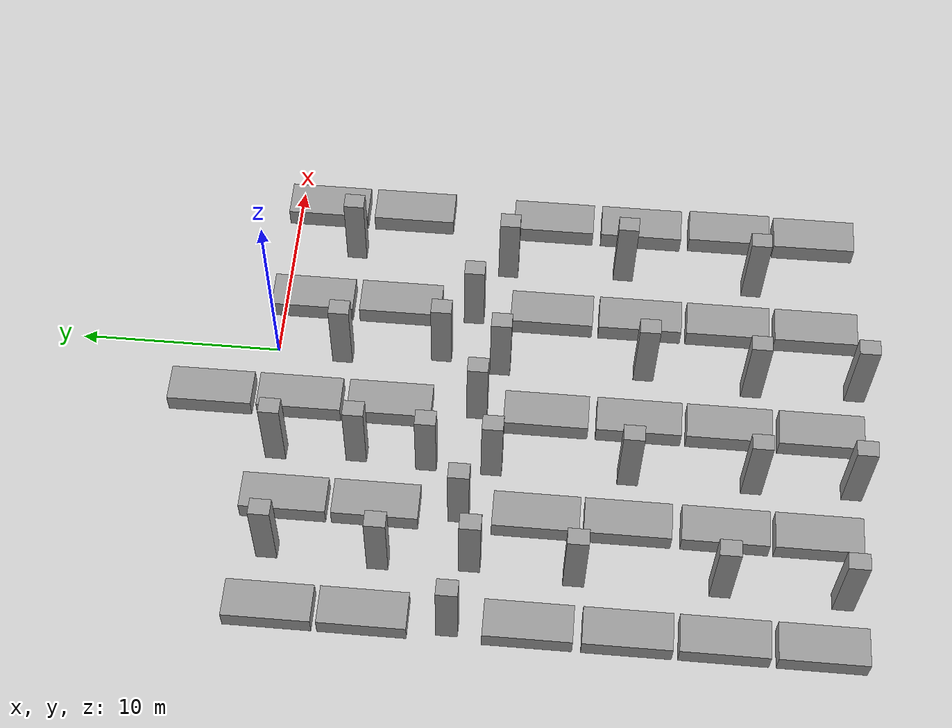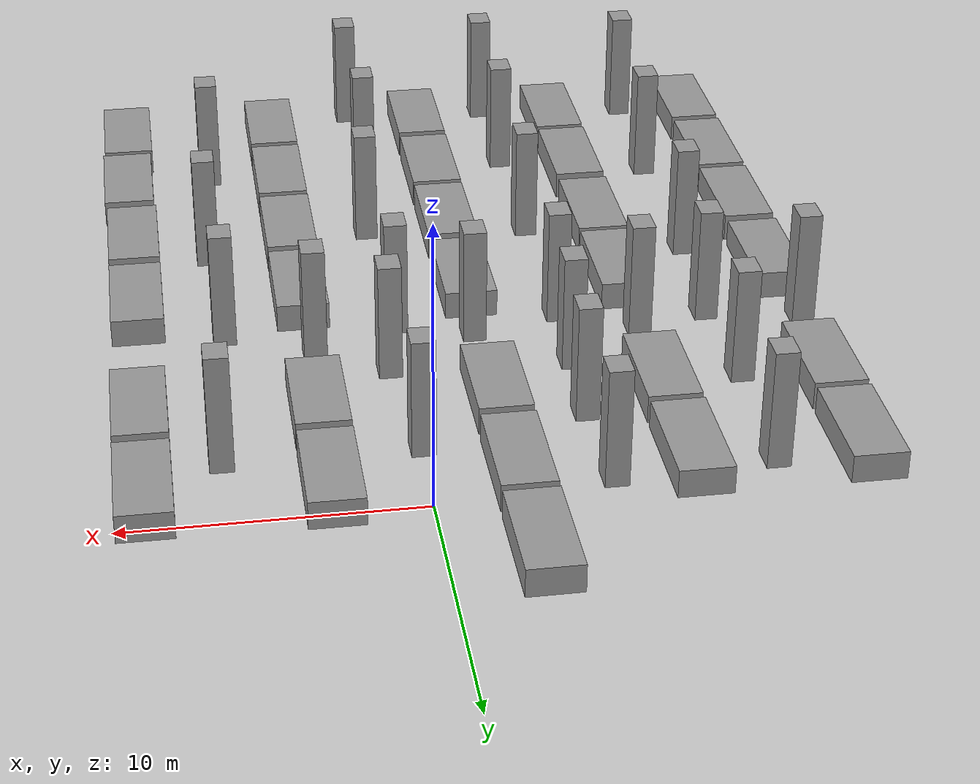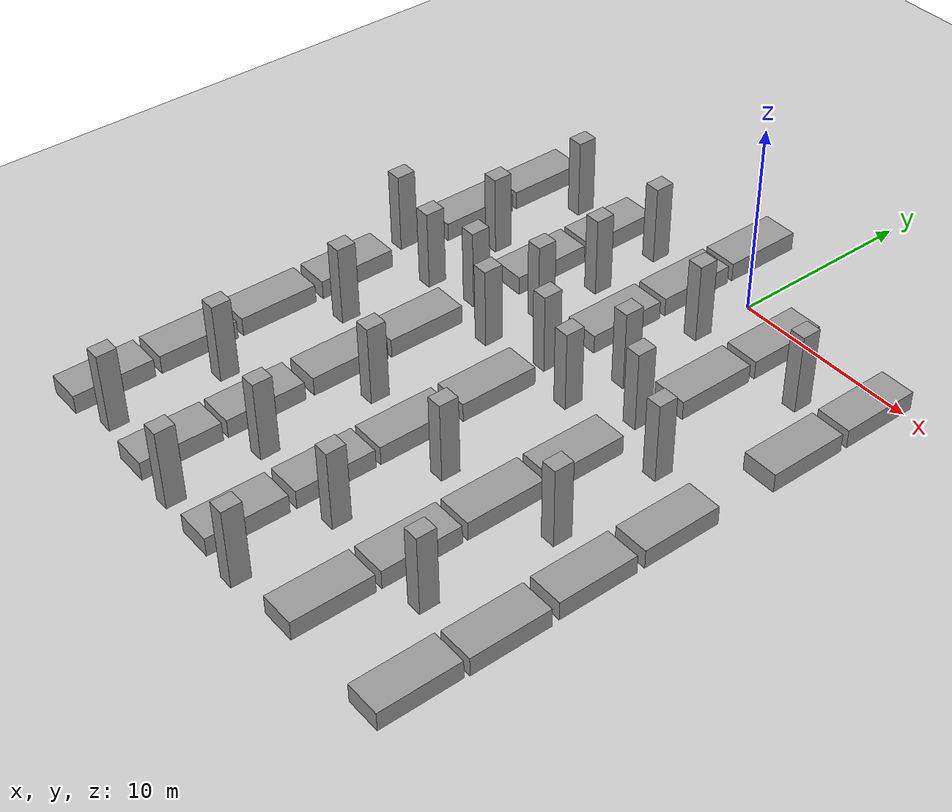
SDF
<sdf version="1.7">
 <world name="default">
  <model name="ground_plane">
   <static>1</static>
   <link name="link">
    <collision name="collision">
     <geometry><plane><normal>0 0 1</normal><size>100 100</size></plane></geometry>
     <surface>
      <contact><collide_bitmask>65535</collide_bitmask></contact>
      <friction><ode><mu>100</mu><mu2>50</mu2></ode></friction>
     </surface>
    </collision>
    <visual name="visual">
     <geometry><plane><normal>0 0 1</normal><size>100 100</size></plane></geometry>
     <material>
      <script><uri>file://media/materials/scripts/gazebo.material</uri><name>Gazebo/Grey</name></script>
     </material>
    </visual>
   </link>
  </model>
  <model name="unit_box">
   <pose>8.90241 -26.8368 0.5 -0 1e-06 0.001252</pose>
   <link name="link">
    <inertial>
     <mass>1</mass>
     <inertia>
      <ixx>0.166667</ixx>
      <ixy>0</ixy>
      <ixz>0</ixz>
      <iyy>0.166667</iyy>
      <iyz>0</iyz>
      <izz>0.166667</izz>
     </inertia>
    </inertial>
    <collision name="collision"><geometry><box><size>1.85096 4.12993 1</size></box></geometry></collision>
    <visual name="visual">
     <geometry><box><size>1.85096 4.12993 1</size></box></geometry>
     <material>
      <script><name>Gazebo/Grey</name><uri>file://media/materials/scripts/gazebo.material</uri></script>
     </material>
    </visual>
   </link>
  </model>
  <model name="unit_box_clone">
   <pose>8.96485 -22.4699 0.499996 0 5e-06 -0.000225</pose>
   <link name="link">
    <inertial>
     <mass>1</mass>
     <inertia>
      <ixx>0.166667</ixx>
      <ixy>0</ixy>
      <ixz>0</ixz>
      <iyy>0.166667</iyy>
      <iyz>0</iyz>
      <izz>0.166667</izz>
     </inertia>
    </inertial>
    <collision name="collision"><geometry><box><size>1.85096 4.12993 1</size></box></geometry></collision>
    <visual name="visual">
     <geometry><box><size>1.85096 4.12993 1</size></box></geometry>
     <material>
      <script><name>Gazebo/Grey</name><uri>file://media/materials/scripts/gazebo.material</uri></script>
     </material>
    </visual>
   </link>
  </model>
  <model name="unit_box_clone_clone">
   <pose>8.89161 -17.9103 0.499996 0 5e-06 -0.000242</pose>
   <link name="link">
    <inertial>
     <mass>1</mass>
     <inertia>
      <ixx>0.166667</ixx>
      <ixy>0</ixy>
      <ixz>0</ixz>
      <iyy>0.166667</iyy>
      <iyz>0</iyz>
      <izz>0.166667</izz>
     </inertia>
    </inertial>
    <collision name="collision"><geometry><box><size>1.85096 4.12993 1</size></box></geometry></collision>
    <visual name="visual">
     <geometry><box><size>1.85096 4.12993 1</size></box></geometry>
     <material>
      <script><name>Gazebo/Grey</name><uri>file://media/materials/scripts/gazebo.material</uri></script>
     </material>
    </visual>
   </link>
  </model>
  <model name="unit_box_clone_clone_0">
   <pose>8.88995 -13.3499 0.499996 0 5e-06 -0.000396</pose>
   <link name="link">
    <inertial>
     <mass>1</mass>
     <inertia>
      <ixx>0.166667</ixx>
      <ixy>0</ixy>
      <ixz>0</ixz>
      <iyy>0.166667</iyy>
      <iyz>0</iyz>
      <izz>0.166667</izz>
     </inertia>
    </inertial>
    <collision name="collision"><geometry><box><size>1.85096 4.12993 1</size></box></geometry></collision>
    <visual name="visual">
     <geometry><box><size>1.85096 4.12993 1</size></box></geometry>
     <material>
      <script><name>Gazebo/Grey</name><uri>file://media/materials/scripts/gazebo.material</uri></script>
     </material>
    </visual>
   </link>
  </model>
  <model name="unit_box_clone_clone_1">
   <pose>8.98225 -6.04845 0.499996 0 5e-06 -0.000487</pose>
   <link name="link">
    <inertial>
     <mass>1</mass>
     <inertia>
      <ixx>0.166667</ixx>
      <ixy>0</ixy>
      <ixz>0</ixz>
      <iyy>0.166667</iyy>
      <iyz>0</iyz>
      <izz>0.166667</izz>
     </inertia>
    </inertial>
    <collision name="collision"><geometry><box><size>1.85096 4.12993 1</size></box></geometry></collision>
    <visual name="visual">
     <geometry><box><size>1.85096 4.12993 1</size></box></geometry>
     <material>
      <script><name>Gazebo/Grey</name><uri>file://media/materials/scripts/gazebo.material</uri></script>
     </material>
    </visual>
   </link>
  </model>
  <model name="unit_box_clone_clone_3">
   <pose>8.98226 -1.54834 0.5 0 -1e-06 -0.000107</pose>
   <link name="link">
    <inertial>
     <mass>1</mass>
     <inertia>
      <ixx>0.166667</ixx>
      <ixy>0</ixy>
      <ixz>0</ixz>
      <iyy>0.166667</iyy>
      <iyz>0</iyz>
      <izz>0.166667</izz>
     </inertia>
    </inertial>
    <collision name="collision"><geometry><box><size>1.85096 4.12993 1</size></box></geometry></collision>
    <visual name="visual">
     <geometry><box><size>1.85096 4.12993 1</size></box></geometry>
     <material>
      <script><name>Gazebo/Grey</name><uri>file://media/materials/scripts/gazebo.material</uri></script>
     </material>
    </visual>
   </link>
  </model>
  <model name="unit_box_clone_clone_15">
   <pose>3.08121 -1.42818 0.5 -0 -1e-06 -0.001181</pose>
   <link name="link">
    <inertial>
     <mass>1</mass>
     <inertia>
      <ixx>0.166667</ixx>
      <ixy>0</ixy>
      <ixz>0</ixz>
      <iyy>0.166667</iyy>
      <iyz>0</iyz>
      <izz>0.166667</izz>
     </inertia>
    </inertial>
    <collision name="collision"><geometry><box><size>1.85096 4.12993 1</size></box></geometry></collision>
    <visual name="visual">
     <geometry><box><size>1.85096 4.12993 1</size></box></geometry>
     <material>
      <script><name>Gazebo/Grey</name><uri>file://media/materials/scripts/gazebo.material</uri></script>
     </material>
    </visual>
   </link>
  </model>
  <model name="unit_box_clone_clone_16">
   <pose>3.08031 -5.90701 0.5 -0 1e-06 0.000942</pose>
   <link name="link">
    <inertial>
     <mass>1</mass>
     <inertia>
      <ixx>0.166667</ixx>
      <ixy>0</ixy>
      <ixz>0</ixz>
      <iyy>0.166667</iyy>
      <iyz>0</iyz>
      <izz>0.166667</izz>
     </inertia>
    </inertial>
    <collision name="collision"><geometry><box><size>1.85096 4.12993 1</size></box></geometry></collision>
    <visual name="visual">
     <geometry><box><size>1.85096 4.12993 1</size></box></geometry>
     <material>
      <script><name>Gazebo/Grey</name><uri>file://media/materials/scripts/gazebo.material</uri></script>
     </material>
    </visual>
   </link>
  </model>
  <model name="unit_box_clone_clone_17">
   <pose>3.08032 -13.5734 0.5 -0 -1e-06 -0.001711</pose>
   <link name="link">
    <inertial>
     <mass>1</mass>
     <inertia>
      <ixx>0.166667</ixx>
      <ixy>0</ixy>
      <ixz>0</ixz>
      <iyy>0.166667</iyy>
      <iyz>0</iyz>
      <izz>0.166667</izz>
     </inertia>
    </inertial>
    <collision name="collision"><geometry><box><size>1.85096 4.12993 1</size></box></geometry></collision>
    <visual name="visual">
     <geometry><box><size>1.85096 4.12993 1</size></box></geometry>
     <material>
      <script><name>Gazebo/Grey</name><uri>file://media/materials/scripts/gazebo.material</uri></script>
     </material>
    </visual>
   </link>
  </model>
  <model name="unit_box_clone_clone_18">
   <pose>3.08001 -18.0322 0.5 -0 1e-06 0.002271</pose>
   <link name="link">
    <inertial>
     <mass>1</mass>
     <inertia>
      <ixx>0.166667</ixx>
      <ixy>0</ixy>
      <ixz>0</ixz>
      <iyy>0.166667</iyy>
      <iyz>0</iyz>
      <izz>0.166667</izz>
     </inertia>
    </inertial>
    <collision name="collision"><geometry><box><size>1.85096 4.12993 1</size></box></geometry></collision>
    <visual name="visual">
     <geometry><box><size>1.85096 4.12993 1</size></box></geometry>
     <material>
      <script><name>Gazebo/Grey</name><uri>file://media/materials/scripts/gazebo.material</uri></script>
     </material>
    </visual>
   </link>
  </model>
  <model name="unit_box_clone_clone_19">
   <pose>3.08438 -22.4365 0.499996 0 -5e-06 0.000502</pose>
   <link name="link">
    <inertial>
     <mass>1</mass>
     <inertia>
      <ixx>0.166667</ixx>
      <ixy>0</ixy>
      <ixz>0</ixz>
      <iyy>0.166667</iyy>
      <iyz>0</iyz>
      <izz>0.166667</izz>
     </inertia>
    </inertial>
    <collision name="collision"><geometry><box><size>1.85096 4.12993 1</size></box></geometry></collision>
    <visual name="visual">
     <geometry><box><size>1.85096 4.12993 1</size></box></geometry>
     <material>
      <script><name>Gazebo/Grey</name><uri>file://media/materials/scripts/gazebo.material</uri></script>
     </material>
    </visual>
   </link>
  </model>
  <model name="unit_box_clone_clone_20">
   <pose>3.08835 -26.8512 0.5 0 -1e-06 0.001174</pose>
   <link name="link">
    <inertial>
     <mass>1</mass>
     <inertia>
      <ixx>0.166667</ixx>
      <ixy>0</ixy>
      <ixz>0</ixz>
      <iyy>0.166667</iyy>
      <iyz>0</iyz>
      <izz>0.166667</izz>
     </inertia>
    </inertial>
    <collision name="collision"><geometry><box><size>1.85096 4.12993 1</size></box></geometry></collision>
    <visual name="visual">
     <geometry><box><size>1.85096 4.12993 1</size></box></geometry>
     <material>
      <script><name>Gazebo/Grey</name><uri>file://media/materials/scripts/gazebo.material</uri></script>
     </material>
    </visual>
   </link>
  </model>
  <model name="unit_box_clone_clone_21">
   <pose>-2.93399 -27.0156 0.499996 0 5e-06 -0.000369</pose>
   <link name="link">
    <inertial>
     <mass>1</mass>
     <inertia>
      <ixx>0.166667</ixx>
      <ixy>0</ixy>
      <ixz>0</ixz>
      <iyy>0.166667</iyy>
      <iyz>0</iyz>
      <izz>0.166667</izz>
     </inertia>
    </inertial>
    <collision name="collision"><geometry><box><size>1.85096 4.12993 1</size></box></geometry></collision>
    <visual name="visual">
     <geometry><box><size>1.85096 4.12993 1</size></box></geometry>
     <material>
      <script><name>Gazebo/Grey</name><uri>file://media/materials/scripts/gazebo.material</uri></script>
     </material>
    </visual>
   </link>
  </model>
  <model name="unit_box_clone_clone_22">
   <pose>-2.93399 -22.5461 0.499996 -0 -5e-06 0.000186</pose>
   <link name="link">
    <inertial>
     <mass>1</mass>
     <inertia>
      <ixx>0.166667</ixx>
      <ixy>0</ixy>
      <ixz>0</ixz>
      <iyy>0.166667</iyy>
      <iyz>0</iyz>
      <izz>0.166667</izz>
     </inertia>
    </inertial>
    <collision name="collision"><geometry><box><size>1.85096 4.12993 1</size></box></geometry></collision>
    <visual name="visual">
     <geometry><box><size>1.85096 4.12993 1</size></box></geometry>
     <material>
      <script><name>Gazebo/Grey</name><uri>file://media/materials/scripts/gazebo.material</uri></script>
     </material>
    </visual>
   </link>
  </model>
  <model name="unit_box_clone_clone_23">
   <pose>-2.93399 -18.1654 0.499996 0 -5e-06 -1.9e-05</pose>
   <link name="link">
    <inertial>
     <mass>1</mass>
     <inertia>
      <ixx>0.166667</ixx>
      <ixy>0</ixy>
      <ixz>0</ixz>
      <iyy>0.166667</iyy>
      <iyz>0</iyz>
      <izz>0.166667</izz>
     </inertia>
    </inertial>
    <collision name="collision"><geometry><box><size>1.85096 4.12993 1</size></box></geometry></collision>
    <visual name="visual">
     <geometry><box><size>1.85096 4.12993 1</size></box></geometry>
     <material>
      <script><name>Gazebo/Grey</name><uri>file://media/materials/scripts/gazebo.material</uri></script>
     </material>
    </visual>
   </link>
  </model>
  <model name="unit_box_clone_clone_24">
   <pose>-2.934 -13.6376 0.5 0 -1e-06 -0.001213</pose>
   <link name="link">
    <inertial>
     <mass>1</mass>
     <inertia>
      <ixx>0.166667</ixx>
      <ixy>0</ixy>
      <ixz>0</ixz>
      <iyy>0.166667</iyy>
      <iyz>0</iyz>
      <izz>0.166667</izz>
     </inertia>
    </inertial>
    <collision name="collision"><geometry><box><size>1.85096 4.12993 1</size></box></geometry></collision>
    <visual name="visual">
     <geometry><box><size>1.85096 4.12993 1</size></box></geometry>
     <material>
      <script><name>Gazebo/Grey</name><uri>file://media/materials/scripts/gazebo.material</uri></script>
     </material>
    </visual>
   </link>
  </model>
  <model name="unit_box_clone_clone_25">
   <pose>-2.93405 -5.96208 0.5 0 -1e-06 0.00233</pose>
   <link name="link">
    <inertial>
     <mass>1</mass>
     <inertia>
      <ixx>0.166667</ixx>
      <ixy>0</ixy>
      <ixz>0</ixz>
      <iyy>0.166667</iyy>
      <iyz>0</iyz>
      <izz>0.166667</izz>
     </inertia>
    </inertial>
    <collision name="collision"><geometry><box><size>1.85096 4.12993 1</size></box></geometry></collision>
    <visual name="visual">
     <geometry><box><size>1.85096 4.12993 1</size></box></geometry>
     <material>
      <script><name>Gazebo/Grey</name><uri>file://media/materials/scripts/gazebo.material</uri></script>
     </material>
    </visual>
   </link>
  </model>
  <model name="unit_box_clone_clone_26">
   <pose>-2.934 -1.5017 0.5 0 -1e-06 0.001041</pose>
   <link name="link">
    <inertial>
     <mass>1</mass>
     <inertia>
      <ixx>0.166667</ixx>
      <ixy>0</ixy>
      <ixz>0</ixz>
      <iyy>0.166667</iyy>
      <iyz>0</iyz>
      <izz>0.166667</izz>
     </inertia>
    </inertial>
    <collision name="collision"><geometry><box><size>1.85096 4.12993 1</size></box></geometry></collision>
    <visual name="visual">
     <geometry><box><size>1.85096 4.12993 1</size></box></geometry>
     <material>
      <script><name>Gazebo/Grey</name><uri>file://media/materials/scripts/gazebo.material</uri></script>
     </material>
    </visual>
   </link>
  </model>
  <model name="unit_box_clone_clone_27">
   <pose>-2.934 2.90946 0.5 0 1e-06 0.001432</pose>
   <link name="link">
    <inertial>
     <mass>1</mass>
     <inertia>
      <ixx>0.166667</ixx>
      <ixy>0</ixy>
      <ixz>0</ixz>
      <iyy>0.166667</iyy>
      <iyz>0</iyz>
      <izz>0.166667</izz>
     </inertia>
    </inertial>
    <collision name="collision"><geometry><box><size>1.85096 4.12993 1</size></box></geometry></collision>
    <visual name="visual">
     <geometry><box><size>1.85096 4.12993 1</size></box></geometry>
     <material>
      <script><name>Gazebo/Grey</name><uri>file://media/materials/scripts/gazebo.material</uri></script>
     </material>
    </visual>
   </link>
  </model>
  <model name="unit_box_clone_clone_33">
   <pose>-8.57999 -26.7871 0.499996 0 5e-06 0.000206</pose>
   <link name="link">
    <inertial>
     <mass>1</mass>
     <inertia>
      <ixx>0.166667</ixx>
      <ixy>0</ixy>
      <ixz>0</ixz>
      <iyy>0.166667</iyy>
      <iyz>0</iyz>
      <izz>0.166667</izz>
     </inertia>
    </inertial>
    <collision name="collision"><geometry><box><size>1.85096 4.12993 1</size></box></geometry></collision>
    <visual name="visual">
     <geometry><box><size>1.85096 4.12993 1</size></box></geometry>
     <material>
      <script><name>Gazebo/Grey</name><uri>file://media/materials/scripts/gazebo.material</uri></script>
     </material>
    </visual>
   </link>
  </model>
  <model name="unit_box_clone_clone_34">
   <pose>-8.58 -22.4107 0.5 0 1e-06 -0.000679</pose>
   <link name="link">
    <inertial>
     <mass>1</mass>
     <inertia>
      <ixx>0.166667</ixx>
      <ixy>0</ixy>
      <ixz>0</ixz>
      <iyy>0.166667</iyy>
      <iyz>0</iyz>
      <izz>0.166667</izz>
     </inertia>
    </inertial>
    <collision name="collision"><geometry><box><size>1.85096 4.12993 1</size></box></geometry></collision>
    <visual name="visual">
     <geometry><box><size>1.85096 4.12993 1</size></box></geometry>
     <material>
      <script><name>Gazebo/Grey</name><uri>file://media/materials/scripts/gazebo.material</uri></script>
     </material>
    </visual>
   </link>
  </model>
  <model name="unit_box_clone_clone_35">
   <pose>-8.58001 -17.828 0.5 -0 -1e-06 0.000929</pose>
   <link name="link">
    <inertial>
     <mass>1</mass>
     <inertia>
      <ixx>0.166667</ixx>
      <ixy>0</ixy>
      <ixz>0</ixz>
      <iyy>0.166667</iyy>
      <iyz>0</iyz>
      <izz>0.166667</izz>
     </inertia>
    </inertial>
    <collision name="collision"><geometry><box><size>1.85096 4.12993 1</size></box></geometry></collision>
    <visual name="visual">
     <geometry><box><size>1.85096 4.12993 1</size></box></geometry>
     <material>
      <script><name>Gazebo/Grey</name><uri>file://media/materials/scripts/gazebo.material</uri></script>
     </material>
    </visual>
   </link>
  </model>
  <model name="unit_box_clone_clone_36">
   <pose>-8.58 -13.4881 0.5 -0 1e-06 -0.000877</pose>
   <link name="link">
    <inertial>
     <mass>1</mass>
     <inertia>
      <ixx>0.166667</ixx>
      <ixy>0</ixy>
      <ixz>0</ixz>
      <iyy>0.166667</iyy>
      <iyz>0</iyz>
      <izz>0.166667</izz>
     </inertia>
    </inertial>
    <collision name="collision"><geometry><box><size>1.85096 4.12993 1</size></box></geometry></collision>
    <visual name="visual">
     <geometry><box><size>1.85096 4.12993 1</size></box></geometry>
     <material>
      <script><name>Gazebo/Grey</name><uri>file://media/materials/scripts/gazebo.material</uri></script>
     </material>
    </visual>
   </link>
  </model>
  <model name="unit_box_clone_clone_37">
   <pose>-8.57999 -5.87789 0.499996 0 5e-06 -0.001114</pose>
   <link name="link">
    <inertial>
     <mass>1</mass>
     <inertia>
      <ixx>0.166667</ixx>
      <ixy>0</ixy>
      <ixz>0</ixz>
      <iyy>0.166667</iyy>
      <iyz>0</iyz>
      <izz>0.166667</izz>
     </inertia>
    </inertial>
    <collision name="collision"><geometry><box><size>1.85096 4.12993 1</size></box></geometry></collision>
    <visual name="visual">
     <geometry><box><size>1.85096 4.12993 1</size></box></geometry>
     <material>
      <script><name>Gazebo/Grey</name><uri>file://media/materials/scripts/gazebo.material</uri></script>
     </material>
    </visual>
   </link>
  </model>
  <model name="unit_box_clone_clone_38">
   <pose>-8.58001 -1.47265 0.499996 0 5e-06 0.000312</pose>
   <link name="link">
    <inertial>
     <mass>1</mass>
     <inertia>
      <ixx>0.166667</ixx>
      <ixy>0</ixy>
      <ixz>0</ixz>
      <iyy>0.166667</iyy>
      <iyz>0</iyz>
      <izz>0.166667</izz>
     </inertia>
    </inertial>
    <collision name="collision"><geometry><box><size>1.85096 4.12993 1</size></box></geometry></collision>
    <visual name="visual">
     <geometry><box><size>1.85096 4.12993 1</size></box></geometry>
     <material>
      <script><name>Gazebo/Grey</name><uri>file://media/materials/scripts/gazebo.material</uri></script>
     </material>
    </visual>
   </link>
  </model>
  <model name="unit_box_clone_clone_51">
   <pose>-14.24 -1.49685 0.499996 0 5e-06 0.000312</pose>
   <link name="link">
    <inertial>
     <mass>1</mass>
     <inertia>
      <ixx>0.166667</ixx>
      <ixy>0</ixy>
      <ixz>0</ixz>
      <iyy>0.166667</iyy>
      <iyz>0</iyz>
      <izz>0.166667</izz>
     </inertia>
    </inertial>
    <collision name="collision"><geometry><box><size>1.85096 4.12993 1</size></box></geometry></collision>
    <visual name="visual">
     <geometry><box><size>1.85096 4.12993 1</size></box></geometry>
     <material>
      <script><name>Gazebo/Grey</name><uri>file://media/materials/scripts/gazebo.material</uri></script>
     </material>
    </visual>
   </link>
  </model>
  <model name="unit_box_clone_clone_52">
   <pose>-14.24 -5.89571 0.5 0 -1e-06 -0.000713</pose>
   <link name="link">
    <inertial>
     <mass>1</mass>
     <inertia>
      <ixx>0.166667</ixx>
      <ixy>0</ixy>
      <ixz>0</ixz>
      <iyy>0.166667</iyy>
      <iyz>0</iyz>
      <izz>0.166667</izz>
     </inertia>
    </inertial>
    <collision name="collision"><geometry><box><size>1.85096 4.12993 1</size></box></geometry></collision>
    <visual name="visual">
     <geometry><box><size>1.85096 4.12993 1</size></box></geometry>
     <material>
      <script><name>Gazebo/Grey</name><uri>file://media/materials/scripts/gazebo.material</uri></script>
     </material>
    </visual>
   </link>
  </model>
  <model name="unit_box_clone_clone_53">
   <pose>-14.24 -13.4729 0.499996 0 5e-06 0.0007</pose>
   <link name="link">
    <inertial>
     <mass>1</mass>
     <inertia>
      <ixx>0.166667</ixx>
      <ixy>0</ixy>
      <ixz>0</ixz>
      <iyy>0.166667</iyy>
      <iyz>0</iyz>
      <izz>0.166667</izz>
     </inertia>
    </inertial>
    <collision name="collision"><geometry><box><size>1.85096 4.12993 1</size></box></geometry></collision>
    <visual name="visual">
     <geometry><box><size>1.85096 4.12993 1</size></box></geometry>
     <material>
      <script><name>Gazebo/Grey</name><uri>file://media/materials/scripts/gazebo.material</uri></script>
     </material>
    </visual>
   </link>
  </model>
  <model name="unit_box_clone_clone_54">
   <pose>-14.24 -18.0108 0.5 0 1e-06 0.001178</pose>
   <link name="link">
    <inertial>
     <mass>1</mass>
     <inertia>
      <ixx>0.166667</ixx>
      <ixy>0</ixy>
      <ixz>0</ixz>
      <iyy>0.166667</iyy>
      <iyz>0</iyz>
      <izz>0.166667</izz>
     </inertia>
    </inertial>
    <collision name="collision"><geometry><box><size>1.85096 4.12993 1</size></box></geometry></collision>
    <visual name="visual">
     <geometry><box><size>1.85096 4.12993 1</size></box></geometry>
     <material>
      <script><name>Gazebo/Grey</name><uri>file://media/materials/scripts/gazebo.material</uri></script>
     </material>
    </visual>
   </link>
  </model>
  <model name="unit_box_clone_clone_55">
   <pose>-14.24 -22.43 0.5 0 1e-06 -0.000648</pose>
   <link name="link">
    <inertial>
     <mass>1</mass>
     <inertia>
      <ixx>0.166667</ixx>
      <ixy>0</ixy>
      <ixz>0</ixz>
      <iyy>0.166667</iyy>
      <iyz>0</iyz>
      <izz>0.166667</izz>
     </inertia>
    </inertial>
    <collision name="collision"><geometry><box><size>1.85096 4.12993 1</size></box></geometry></collision>
    <visual name="visual">
     <geometry><box><size>1.85096 4.12993 1</size></box></geometry>
     <material>
      <script><name>Gazebo/Grey</name><uri>file://media/materials/scripts/gazebo.material</uri></script>
     </material>
    </visual>
   </link>
  </model>
  <model name="unit_box_clone_clone_56">
   <pose>-14.24 -26.883 0.499996 0 5e-06 -6.9e-05</pose>
   <link name="link">
    <inertial>
     <mass>1</mass>
     <inertia>
      <ixx>0.166667</ixx>
      <ixy>0</ixy>
      <ixz>0</ixz>
      <iyy>0.166667</iyy>
      <iyz>0</iyz>
      <izz>0.166667</izz>
     </inertia>
    </inertial>
    <collision name="collision"><geometry><box><size>1.85096 4.12993 1</size></box></geometry></collision>
    <visual name="visual">
     <geometry><box><size>1.85096 4.12993 1</size></box></geometry>
     <material>
      <script><name>Gazebo/Grey</name><uri>file://media/materials/scripts/gazebo.material</uri></script>
     </material>
    </visual>
   </link>
  </model>
  <model name="warehouse_pillar_2">
   <pose>5.89882 -11.1814 2.2 0 0 -0.001219</pose>
   <link name="link">
    <inertial>
     <mass>1</mass>
     <inertia>
      <ixx>0.166667</ixx>
      <ixy>0</ixy>
      <ixz>0</ixz>
      <iyy>0.166667</iyy>
      <iyz>0</iyz>
      <izz>0.166667</izz>
     </inertia>
    </inertial>
    <collision name="collision"><geometry><box><size>0.803786 1 4.26698</size></box></geometry></collision>
    <visual name="visual">
     <geometry><box><size>0.803786 1 4.26698</size></box></geometry>
     <material>
      <script><name>Gazebo/Grey</name><uri>file://media/materials/scripts/gazebo.material</uri></script>
     </material>
    </visual>
    <gravity>0</gravity>
   </link>
  </model>
  <model name="warehouse_pillar_1">
   <pose>5.74717 -23.6795 2.2 0 0 -0.001226</pose>
   <link name="link">
    <inertial>
     <mass>1</mass>
     <inertia>
      <ixx>0.166667</ixx>
      <ixy>0</ixy>
      <ixz>0</ixz>
      <iyy>0.166667</iyy>
      <iyz>0</iyz>
      <izz>0.166667</izz>
     </inertia>
    </inertial>
    <collision name="collision"><geometry><box><size>0.803786 1 4.26698</size></box></geometry></collision>
    <visual name="visual">
     <geometry><box><size>0.803786 1 4.26698</size></box></geometry>
     <material>
      <script><name>Gazebo/Grey</name><uri>file://media/materials/scripts/gazebo.material</uri></script>
     </material>
    </visual>
    <gravity>0</gravity>
   </link>
  </model>
  <model name="warehouse_pillar_6">
   <pose>-0.389792 -23.6789 2.2 0 0 -0.001237</pose>
   <link name="link">
    <inertial>
     <mass>1</mass>
     <inertia>
      <ixx>0.166667</ixx>
      <ixy>0</ixy>
      <ixz>0</ixz>
      <iyy>0.166667</iyy>
      <iyz>0</iyz>
      <izz>0.166667</izz>
     </inertia>
    </inertial>
    <collision name="collision"><geometry><box><size>0.803786 1 4.26698</size></box></geometry></collision>
    <visual name="visual">
     <geometry><box><size>0.803786 1 4.26698</size></box></geometry>
     <material>
      <script><name>Gazebo/Grey</name><uri>file://media/materials/scripts/gazebo.material</uri></script>
     </material>
    </visual>
    <gravity>0</gravity>
   </link>
  </model>
  <model name="warehouse_pillar_7">
   <pose>-0.131333 -11.181 2.2 0 0 -0.001232</pose>
   <link name="link">
    <inertial>
     <mass>1</mass>
     <inertia>
      <ixx>0.166667</ixx>
      <ixy>0</ixy>
      <ixz>0</ixz>
      <iyy>0.166667</iyy>
      <iyz>0</iyz>
      <izz>0.166667</izz>
     </inertia>
    </inertial>
    <collision name="collision"><geometry><box><size>0.803786 1 4.26698</size></box></geometry></collision>
    <visual name="visual">
     <geometry><box><size>0.803786 1 4.26698</size></box></geometry>
     <material>
      <script><name>Gazebo/Grey</name><uri>file://media/materials/scripts/gazebo.material</uri></script>
     </material>
    </visual>
    <gravity>0</gravity>
   </link>
  </model>
  <model name="warehouse_pillar_12">
   <pose>-5.92064 -11.181 2.2 -1e-06 -0 -0.001208</pose>
   <link name="link">
    <inertial>
     <mass>1</mass>
     <inertia>
      <ixx>0.166667</ixx>
      <ixy>0</ixy>
      <ixz>0</ixz>
      <iyy>0.166667</iyy>
      <iyz>0</iyz>
      <izz>0.166667</izz>
     </inertia>
    </inertial>
    <collision name="collision"><geometry><box><size>0.803786 1 4.26698</size></box></geometry></collision>
    <visual name="visual">
     <geometry><box><size>0.803786 1 4.26698</size></box></geometry>
     <material>
      <script><name>Gazebo/Grey</name><uri>file://media/materials/scripts/gazebo.material</uri></script>
     </material>
    </visual>
    <gravity>0</gravity>
   </link>
  </model>
  <model name="warehouse_pillar_11">
   <pose>-5.8746 -23.6802 2.2 -1e-06 -0 -0.001215</pose>
   <link name="link">
    <inertial>
     <mass>1</mass>
     <inertia>
      <ixx>0.166667</ixx>
      <ixy>0</ixy>
      <ixz>0</ixz>
      <iyy>0.166667</iyy>
      <iyz>0</iyz>
      <izz>0.166667</izz>
     </inertia>
    </inertial>
    <collision name="collision"><geometry><box><size>0.803786 1 4.26698</size></box></geometry></collision>
    <visual name="visual">
     <geometry><box><size>0.803786 1 4.26698</size></box></geometry>
     <material>
      <script><name>Gazebo/Grey</name><uri>file://media/materials/scripts/gazebo.material</uri></script>
     </material>
    </visual>
    <gravity>0</gravity>
   </link>
  </model>
  <model name="warehouse_pillar_16">
   <pose>-11.4746 -22.2235 2.2 0 0 -0.000124</pose>
   <link name="link">
    <inertial>
     <mass>1</mass>
     <inertia>
      <ixx>0.166667</ixx>
      <ixy>0</ixy>
      <ixz>0</ixz>
      <iyy>0.166667</iyy>
      <iyz>0</iyz>
      <izz>0.166667</izz>
     </inertia>
    </inertial>
    <collision name="collision"><geometry><box><size>0.803786 1 4.26698</size></box></geometry></collision>
    <visual name="visual">
     <geometry><box><size>0.803786 1 4.26698</size></box></geometry>
     <material>
      <script><name>Gazebo/Grey</name><uri>file://media/materials/scripts/gazebo.material</uri></script>
     </material>
    </visual>
    <gravity>0</gravity>
   </link>
  </model>
  <model name="warehouse_pillar_17">
   <pose>-11.166 -10.5531 2.2 0 0 -0.00121</pose>
   <link name="link">
    <inertial>
     <mass>1</mass>
     <inertia>
      <ixx>0.166667</ixx>
      <ixy>0</ixy>
      <ixz>0</ixz>
      <iyy>0.166667</iyy>
      <iyz>0</iyz>
      <izz>0.166667</izz>
     </inertia>
    </inertial>
    <collision name="collision"><geometry><box><size>0.803786 1 4.26698</size></box></geometry></collision>
    <visual name="visual">
     <geometry><box><size>0.803786 1 4.26698</size></box></geometry>
     <material>
      <script><name>Gazebo/Grey</name><uri>file://media/materials/scripts/gazebo.material</uri></script>
     </material>
    </visual>
    <gravity>0</gravity>
   </link>
  </model>
  <model name="warehouse_pillar_15_clone_0">
   <pose>-5.70111 -4.61237 2.2 0 0 -0.000724</pose>
   <link name="link">
    <inertial>
     <mass>1</mass>
     <inertia>
      <ixx>0.166667</ixx>
      <ixy>0</ixy>
      <ixz>0</ixz>
      <iyy>0.166667</iyy>
      <iyz>0</iyz>
      <izz>0.166667</izz>
     </inertia>
    </inertial>
    <collision name="collision"><geometry><box><size>0.803786 1 4.26698</size></box></geometry></collision>
    <visual name="visual">
     <geometry><box><size>0.803786 1 4.26698</size></box></geometry>
     <material>
      <script><name>Gazebo/Grey</name><uri>file://media/materials/scripts/gazebo.material</uri></script>
     </material>
    </visual>
    <gravity>0</gravity>
   </link>
  </model>
  <model name="warehouse_pillar_15_clone_1">
   <pose>-5.89313 -17.7525 2.2 0 0 -0.000724</pose>
   <link name="link">
    <inertial>
     <mass>1</mass>
     <inertia>
      <ixx>0.166667</ixx>
      <ixy>0</ixy>
      <ixz>0</ixz>
      <iyy>0.166667</iyy>
      <iyz>0</iyz>
      <izz>0.166667</izz>
     </inertia>
    </inertial>
    <collision name="collision"><geometry><box><size>0.803786 1 4.26698</size></box></geometry></collision>
    <visual name="visual">
     <geometry><box><size>0.803786 1 4.26698</size></box></geometry>
     <material>
      <script><name>Gazebo/Grey</name><uri>file://media/materials/scripts/gazebo.material</uri></script>
     </material>
    </visual>
    <gravity>0</gravity>
   </link>
  </model>
  <model name="warehouse_pillar_15_clone_2">
   <pose>0.128359 -18.3272 2.2 0 0 -0.000724</pose>
   <link name="link">
    <inertial>
     <mass>1</mass>
     <inertia>
      <ixx>0.166667</ixx>
      <ixy>0</ixy>
      <ixz>0</ixz>
      <iyy>0.166667</iyy>
      <iyz>0</iyz>
      <izz>0.166667</izz>
     </inertia>
    </inertial>
    <collision name="collision"><geometry><box><size>0.803786 1 4.26698</size></box></geometry></collision>
    <visual name="visual">
     <geometry><box><size>0.803786 1 4.26698</size></box></geometry>
     <material>
      <script><name>Gazebo/Grey</name><uri>file://media/materials/scripts/gazebo.material</uri></script>
     </material>
    </visual>
    <gravity>0</gravity>
   </link>
  </model>
  <model name="warehouse_pillar_15_clone_3">
   <pose>-0.051626 -3.2642 2.2 0 0 -0.000724</pose>
   <link name="link">
    <inertial>
     <mass>1</mass>
     <inertia>
      <ixx>0.166667</ixx>
      <ixy>0</ixy>
      <ixz>0</ixz>
      <iyy>0.166667</iyy>
      <iyz>0</iyz>
      <izz>0.166667</izz>
     </inertia>
    </inertial>
    <collision name="collision"><geometry><box><size>0.803786 1 4.26698</size></box></geometry></collision>
    <visual name="visual">
     <geometry><box><size>0.803786 1 4.26698</size></box></geometry>
     <material>
      <script><name>Gazebo/Grey</name><uri>file://media/materials/scripts/gazebo.material</uri></script>
     </material>
    </visual>
    <gravity>0</gravity>
   </link>
  </model>
  <model name="warehouse_pillar_15_clone_7">
   <pose>-5.87645 -0.683219 2.2 0 0 -0.000724</pose>
   <link name="link">
    <inertial>
     <mass>1</mass>
     <inertia>
      <ixx>0.166667</ixx>
      <ixy>0</ixy>
      <ixz>0</ixz>
      <iyy>0.166667</iyy>
      <iyz>0</iyz>
      <izz>0.166667</izz>
     </inertia>
    </inertial>
    <collision name="collision"><geometry><box><size>0.803786 1 4.26698</size></box></geometry></collision>
    <visual name="visual">
     <geometry><box><size>0.803786 1 4.26698</size></box></geometry>
     <material>
      <script><name>Gazebo/Grey</name><uri>file://media/materials/scripts/gazebo.material</uri></script>
     </material>
    </visual>
    <gravity>0</gravity>
   </link>
  </model>
  <model name="warehouse_pillar_15_clone_8">
   <pose>-11.2321 -1.00441 2.2 0 0 -0.000724</pose>
   <link name="link">
    <inertial>
     <mass>1</mass>
     <inertia>
      <ixx>0.166667</ixx>
      <ixy>0</ixy>
      <ixz>0</ixz>
      <iyy>0.166667</iyy>
      <iyz>0</iyz>
      <izz>0.166667</izz>
     </inertia>
    </inertial>
    <collision name="collision"><geometry><box><size>0.803786 1 4.26698</size></box></geometry></collision>
    <visual name="visual">
     <geometry><box><size>0.803786 1 4.26698</size></box></geometry>
     <material>
      <script><name>Gazebo/Grey</name><uri>file://media/materials/scripts/gazebo.material</uri></script>
     </material>
    </visual>
    <gravity>0</gravity>
   </link>
  </model>
  <model name="warehouse_pillar_15_clone_9">
   <pose>-11.5001 -15.4361 2.2 0 0 -0.000724</pose>
   <link name="link">
    <inertial>
     <mass>1</mass>
     <inertia>
      <ixx>0.166667</ixx>
      <ixy>0</ixy>
      <ixz>0</ixz>
      <iyy>0.166667</iyy>
      <iyz>0</iyz>
      <izz>0.166667</izz>
     </inertia>
    </inertial>
    <collision name="collision"><geometry><box><size>0.803786 1 4.26698</size></box></geometry></collision>
    <visual name="visual">
     <geometry><box><size>0.803786 1 4.26698</size></box></geometry>
     <material>
      <script><name>Gazebo/Grey</name><uri>file://media/materials/scripts/gazebo.material</uri></script>
     </material>
    </visual>
    <gravity>0</gravity>
   </link>
  </model>
  <model name="warehouse_pillar_15_clone_10">
   <pose>-11.6479 -27.9026 2.2 0 0 -0.000724</pose>
   <link name="link">
    <inertial>
     <mass>1</mass>
     <inertia>
      <ixx>0.166667</ixx>
      <ixy>0</ixy>
      <ixz>0</ixz>
      <iyy>0.166667</iyy>
      <iyz>0</iyz>
      <izz>0.166667</izz>
     </inertia>
    </inertial>
    <collision name="collision"><geometry><box><size>0.803786 1 4.26698</size></box></geometry></collision>
    <visual name="visual">
     <geometry><box><size>0.803786 1 4.26698</size></box></geometry>
     <material>
      <script><name>Gazebo/Grey</name><uri>file://media/materials/scripts/gazebo.material</uri></script>
     </material>
    </visual>
    <gravity>0</gravity>
   </link>
  </model>
  <model name="warehouse_pillar_15_clone_11">
   <pose>-5.80308 -28.4771 2.2 0 0 -0.000724</pose>
   <link name="link">
    <inertial>
     <mass>1</mass>
     <inertia>
      <ixx>0.166667</ixx>
      <ixy>0</ixy>
      <ixz>0</ixz>
      <iyy>0.166667</iyy>
      <iyz>0</iyz>
      <izz>0.166667</izz>
     </inertia>
    </inertial>
    <collision name="collision"><geometry><box><size>0.803786 1 4.26698</size></box></geometry></collision>
    <visual name="visual">
     <geometry><box><size>0.803786 1 4.26698</size></box></geometry>
     <material>
      <script><name>Gazebo/Grey</name><uri>file://media/materials/scripts/gazebo.material</uri></script>
     </material>
    </visual>
    <gravity>0</gravity>
   </link>
  </model>
  <model name="warehouse_pillar_15_clone_12">
   <pose>-0.193359 -28.7901 2.2 0 0 -0.000724</pose>
   <link name="link">
    <inertial>
     <mass>1</mass>
     <inertia>
      <ixx>0.166667</ixx>
      <ixy>0</ixy>
      <ixz>0</ixz>
      <iyy>0.166667</iyy>
      <iyz>0</iyz>
      <izz>0.166667</izz>
     </inertia>
    </inertial>
    <collision name="collision"><geometry><box><size>0.803786 1 4.26698</size></box></geometry></collision>
    <visual name="visual">
     <geometry><box><size>0.803786 1 4.26698</size></box></geometry>
     <material>
      <script><name>Gazebo/Grey</name><uri>file://media/materials/scripts/gazebo.material</uri></script>
     </material>
    </visual>
    <gravity>0</gravity>
   </link>
  </model>
  <model name="warehouse_pillar_15_clone_13">
   <pose>6.18285 -17.0941 2.2 0 0 -0.000724</pose>
   <link name="link">
    <inertial>
     <mass>1</mass>
     <inertia>
      <ixx>0.166667</ixx>
      <ixy>0</ixy>
      <ixz>0</ixz>
      <iyy>0.166667</iyy>
      <iyz>0</iyz>
      <izz>0.166667</izz>
     </inertia>
    </inertial>
    <collision name="collision"><geometry><box><size>0.803786 1 4.26698</size></box></geometry></collision>
    <visual name="visual">
     <geometry><box><size>0.803786 1 4.26698</size></box></geometry>
     <material>
      <script><name>Gazebo/Grey</name><uri>file://media/materials/scripts/gazebo.material</uri></script>
     </material>
    </visual>
    <gravity>0</gravity>
   </link>
  </model>
  <model name="warehouse_pillar_15_clone_14">
   <pose>6.45539 -3.25603 2.2 0 0 -0.000724</pose>
   <link name="link">
    <inertial>
     <mass>1</mass>
     <inertia>
      <ixx>0.166667</ixx>
      <ixy>0</ixy>
      <ixz>0</ixz>
      <iyy>0.166667</iyy>
      <iyz>0</iyz>
      <izz>0.166667</izz>
     </inertia>
    </inertial>
    <collision name="collision"><geometry><box><size>0.803786 1 4.26698</size></box></geometry></collision>
    <visual name="visual">
     <geometry><box><size>0.803786 1 4.26698</size></box></geometry>
     <material>
      <script><name>Gazebo/Grey</name><uri>file://media/materials/scripts/gazebo.material</uri></script>
     </material>
    </visual>
    <gravity>0</gravity>
   </link>
  </model>
  <model name="warehouse_pillar_15_clone_15">
   <pose>0.424602 -8.20459 2.2 0 0 -0.000724</pose>
   <link name="link">
    <inertial>
     <mass>1</mass>
     <inertia>
      <ixx>0.166667</ixx>
      <ixy>0</ixy>
      <ixz>0</ixz>
      <iyy>0.166667</iyy>
      <iyz>0</iyz>
      <izz>0.166667</izz>
     </inertia>
    </inertial>
    <collision name="collision"><geometry><box><size>0.803786 1 4.26698</size></box></geometry></collision>
    <visual name="visual">
     <geometry><box><size>0.803786 1 4.26698</size></box></geometry>
     <material>
      <script><name>Gazebo/Grey</name><uri>file://media/materials/scripts/gazebo.material</uri></script>
     </material>
    </visual>
    <gravity>0</gravity>
   </link>
  </model>
  <model name="warehouse_pillar_15_clone_20">
   <pose>-11.3985 -6.26552 2.2 0 0 -0.000724</pose>
   <link name="link">
    <inertial>
     <mass>1</mass>
     <inertia>
      <ixx>0.166667</ixx>
      <ixy>0</ixy>
      <ixz>0</ixz>
      <iyy>0.166667</iyy>
      <iyz>0</iyz>
      <izz>0.166667</izz>
     </inertia>
    </inertial>
    <collision name="collision"><geometry><box><size>0.803786 1 4.26698</size></box></geometry></collision>
    <visual name="visual">
     <geometry><box><size>0.803786 1 4.26698</size></box></geometry>
     <material>
      <script><name>Gazebo/Grey</name><uri>file://media/materials/scripts/gazebo.material</uri></script>
     </material>
    </visual>
    <gravity>0</gravity>
   </link>
  </model>
  <model name="warehouse_pillar_15_clone_23">
   <pose>-2.78118 -10.2388 2.2 0 0 -0.000724</pose>
   <link name="link">
    <inertial>
     <mass>1</mass>
     <inertia>
      <ixx>0.166667</ixx>
      <ixy>0</ixy>
      <ixz>0</ixz>
      <iyy>0.166667</iyy>
      <iyz>0</iyz>
      <izz>0.166667</izz>
     </inertia>
    </inertial>
    <collision name="collision"><geometry><box><size>0.803786 1 4.26698</size></box></geometry></collision>
    <visual name="visual">
     <geometry><box><size>0.803786 1 4.26698</size></box></geometry>
     <material>
      <script><name>Gazebo/Grey</name><uri>file://media/materials/scripts/gazebo.material</uri></script>
     </material>
    </visual>
    <gravity>0</gravity>
   </link>
  </model>
  <model name="warehouse_pillar_15_clone_25">
   <pose>-14.5111 -9.79484 2.2 0 0 -0.000724</pose>
   <link name="link">
    <inertial>
     <mass>1</mass>
     <inertia>
      <ixx>0.166667</ixx>
      <ixy>0</ixy>
      <ixz>0</ixz>
      <iyy>0.166667</iyy>
      <iyz>0</iyz>
      <izz>0.166667</izz>
     </inertia>
    </inertial>
    <collision name="collision"><geometry><box><size>0.803786 1 4.26698</size></box></geometry></collision>
    <visual name="visual">
     <geometry><box><size>0.803786 1 4.26698</size></box></geometry>
     <material>
      <script><name>Gazebo/Grey</name><uri>file://media/materials/scripts/gazebo.material</uri></script>
     </material>
    </visual>
    <gravity>0</gravity>
   </link>
  </model>
  <model name="warehouse_pillar_15_clone_26">
   <pose>-8.59707 -9.81694 2.2 0 0 -0.000724</pose>
   <link name="link">
    <inertial>
     <mass>1</mass>
     <inertia>
      <ixx>0.166667</ixx>
      <ixy>0</ixy>
      <ixz>0</ixz>
      <iyy>0.166667</iyy>
      <iyz>0</iyz>
      <izz>0.166667</izz>
     </inertia>
    </inertial>
    <collision name="collision"><geometry><box><size>0.803786 1 4.26698</size></box></geometry></collision>
    <visual name="visual">
     <geometry><box><size>0.803786 1 4.26698</size></box></geometry>
     <material>
      <script><name>Gazebo/Grey</name><uri>file://media/materials/scripts/gazebo.material</uri></script>
     </material>
    </visual>
    <gravity>0</gravity>
   </link>
  </model>
  <model name="warehouse_pillar_15_clone_27">
   <pose>2.85758 -9.64423 2.2 0 0 -0.000724</pose>
   <link name="link">
    <inertial>
     <mass>1</mass>
     <inertia>
      <ixx>0.166667</ixx>
      <ixy>0</ixy>
      <ixz>0</ixz>
      <iyy>0.166667</iyy>
      <iyz>0</iyz>
      <izz>0.166667</izz>
     </inertia>
    </inertial>
    <collision name="collision"><geometry><box><size>0.803786 1 4.26698</size></box></geometry></collision>
    <visual name="visual">
     <geometry><box><size>0.803786 1 4.26698</size></box></geometry>
     <material>
      <script><name>Gazebo/Grey</name><uri>file://media/materials/scripts/gazebo.material</uri></script>
     </material>
    </visual>
    <gravity>0</gravity>
   </link>
  </model>
  <model name="warehouse_pillar">
   <link name="link">
    <inertial>
     <mass>1</mass>
     <inertia>
      <ixx>0.166667</ixx>
      <ixy>0</ixy>
      <ixz>0</ixz>
      <iyy>0.166667</iyy>
      <iyz>0</iyz>
      <izz>0.166667</izz>
     </inertia>
    </inertial>
    <visual name="visual">
     <geometry><box><size>0.803786 1 4.26698</size></box></geometry>
     <material>
      <script><name>Gazebo/Grey</name><uri>file://media/materials/scripts/gazebo.material</uri></script>
      <shader type="pixel"/>
     </material>
    </visual>
    <collision name="collision">
     <geometry><box><size>0.803786 1 4.26698</size></box></geometry>
     <surface>
      <friction>
       <ode><mu>1</mu><mu2>1</mu2><fdir1>0 0 0</fdir1><slip1>0</slip1><slip2>0</slip2></ode>
       <torsional>
        <coefficient>1</coefficient>
        <patch_radius>0</patch_radius>
        <surface_radius>0</surface_radius>
        <use_patch_radius>1</use_patch_radius>
        <ode><slip>0</slip></ode>
       </torsional>
      </friction>
      <bounce><restitution_coefficient>0</restitution_coefficient><threshold>1e+06</threshold></bounce>
      <contact>
       <collide_without_contact>0</collide_without_contact>
       <collide_without_contact_bitmask>1</collide_without_contact_bitmask>
       <collide_bitmask>1</collide_bitmask>
       <ode>
        <soft_cfm>0</soft_cfm>
        <soft_erp>0.2</soft_erp>
        <kp>1e+13</kp>
        <kd>1</kd>
        <max_vel>0.01</max_vel>
        <min_depth>0</min_depth>
       </ode>
       <bullet>
        <split_impulse>1</split_impulse>
        <split_impulse_penetration_threshold>-0.01</split_impulse_penetration_threshold>
        <soft_cfm>0</soft_cfm>
        <soft_erp>0.2</soft_erp>
        <kp>1e+13</kp>
        <kd>1</kd>
       </bullet>
      </contact>
     </surface>
    </collision>
   </link>
   <static>0</static>
   <pose>-5.8737 -8.01957 2.13349 0 -0 0.00102</pose>
  </model>
 </world>
</sdf>
